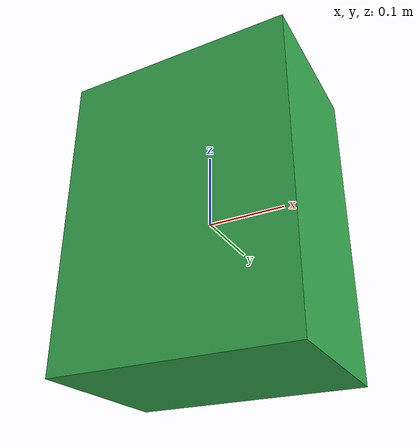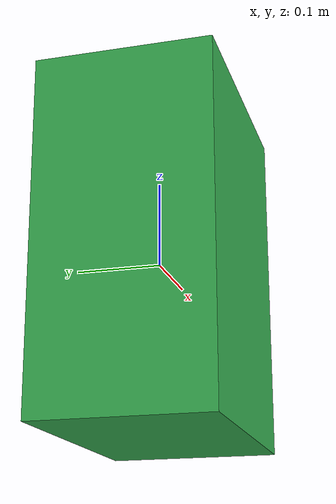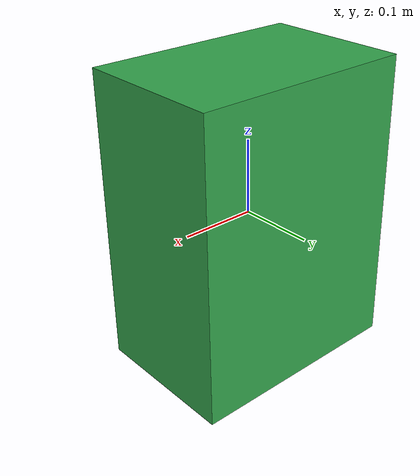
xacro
<?xml version="1.0"?>
<!--
  Box-type charging pile (paper Fig.2). Carried by the robot; rests on
  a fixed support point with a power socket.
-->
<robot name="charging_pile" xmlns:xacro="http://www.ros.org/wiki/xacro">
  <xacro:arg name="pile_id" default="p0"/>
  <xacro:property name="pile_id" value="$(arg pile_id)"/>

  <link name="${pile_id}/body">
    <visual>
      <geometry><box size="0.30 0.20 0.40"/></geometry>
      <material name="pile_green"><color rgba="0.20 0.65 0.30 1.0"/></material>
    </visual>
    <collision>
      <geometry><box size="0.30 0.20 0.40"/></geometry>
    </collision>
    <inertial>
      <mass value="6.0"/>
      <inertia ixx="0.10" ixy="0" ixz="0" iyy="0.10" iyz="0" izz="0.06"/>
    </inertial>
  </link>

  <!-- Latch hole at top so the robot's latch can engage -->
  <link name="${pile_id}/latch_hole"/>
  <joint name="${pile_id}/latch_hole_mount" type="fixed">
    <parent link="${pile_id}/body"/>
    <child  link="${pile_id}/latch_hole"/>
    <origin xyz="0 0 0.20"/>
  </joint>
</robot>
